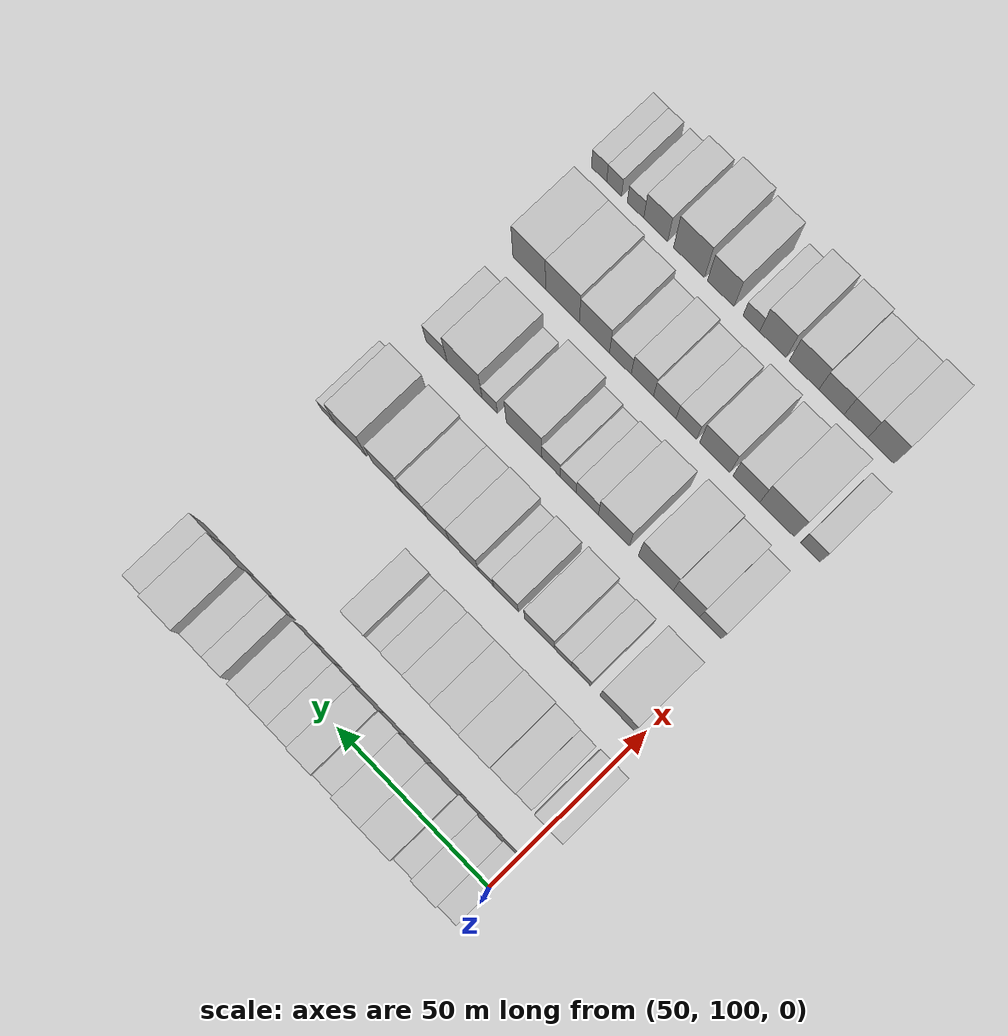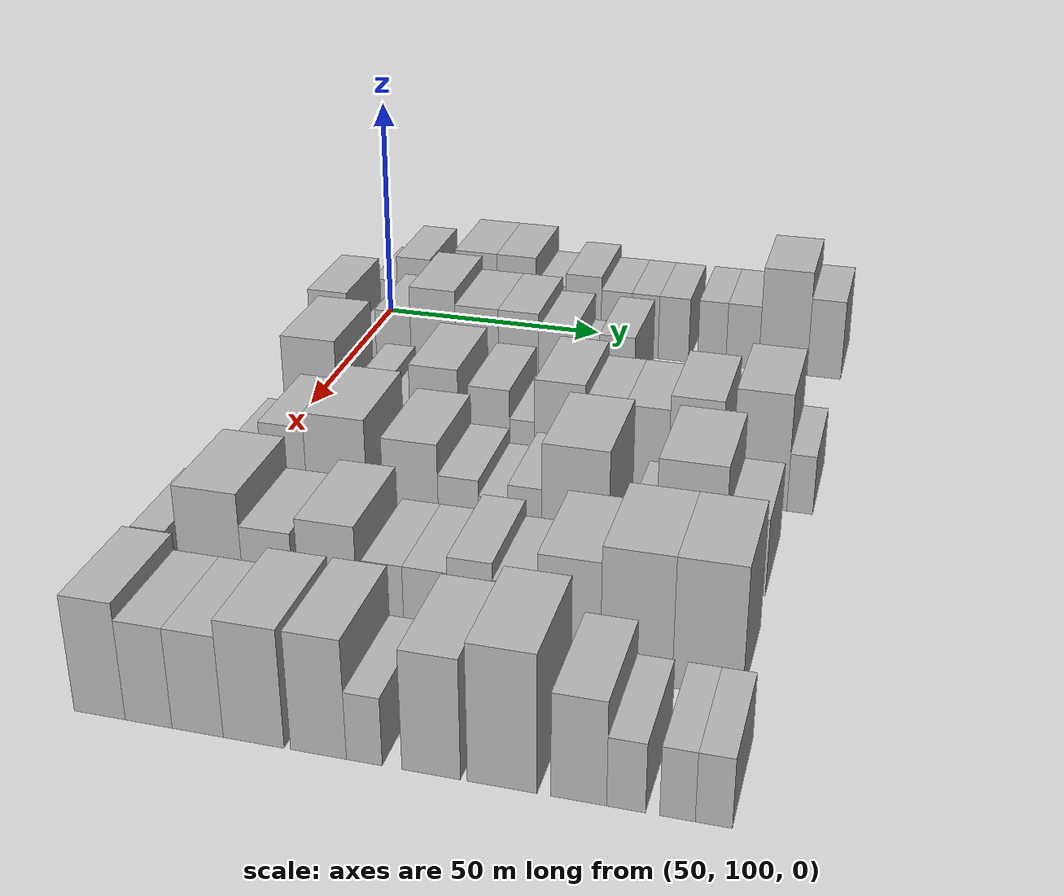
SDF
<sdf version="1.6">
 <world name="default">
  <model name="building_70">
   <static>1</static>
   <pose>50.0000 102.3717 0 0.000000 0.000000 0.000000</pose>
   <link name="link">
    <pose>0 0 6.00 0 0 0</pose>
    <collision name="collision"><geometry><box><size>20.0000 5.9237 12.0000</size></box></geometry></collision>
    <visual name="visual">
     <cast_shadows>0</cast_shadows>
     <geometry><box><size>20.0000 5.9237 12.0000</size></box></geometry>
     <material>
      <script>
       <uri>model://HANNAS_wall/materials/scripts</uri>
       <uri>model://HANNAS_wall/materials/textures</uri>
       <name>vrc/HANNAS_wall</name>
      </script>
     </material>
    </visual>
   </link>
  </model>
  <model name="building_71">
   <static>1</static>
   <pose>50.0000 109.3445 0 0.000000 0.000000 0.000000</pose>
   <link name="link">
    <pose>0 0 9.00 0 0 0</pose>
    <collision name="collision"><geometry><box><size>20.0000 8.0220 18.0000</size></box></geometry></collision>
    <visual name="visual">
     <cast_shadows>0</cast_shadows>
     <geometry><box><size>20.0000 8.0220 18.0000</size></box></geometry>
     <material>
      <script>
       <uri>model://HANNAS_wall/materials/scripts</uri>
       <uri>model://HANNAS_wall/materials/textures</uri>
       <name>vrc/HANNAS_wall</name>
      </script>
     </material>
    </visual>
   </link>
  </model>
  <model name="building_72">
   <static>1</static>
   <pose>50.0000 116.3219 0 0.000000 0.000000 0.000000</pose>
   <link name="link">
    <pose>0 0 6.00 0 0 0</pose>
    <collision name="collision"><geometry><box><size>20.0000 5.9327 12.0000</size></box></geometry></collision>
    <visual name="visual">
     <cast_shadows>0</cast_shadows>
     <geometry><box><size>20.0000 5.9327 12.0000</size></box></geometry>
     <material>
      <script>
       <uri>model://HANNAS_wall/materials/scripts</uri>
       <uri>model://HANNAS_wall/materials/textures</uri>
       <name>vrc/HANNAS_wall</name>
      </script>
     </material>
    </visual>
   </link>
  </model>
  <model name="building_73">
   <static>1</static>
   <pose>50.0000 124.0913 0 0.000000 0.000000 0.000000</pose>
   <link name="link">
    <pose>0 0 10.50 0 0 0</pose>
    <collision name="collision"><geometry><box><size>20.0000 9.6061 21.0000</size></box></geometry></collision>
    <visual name="visual">
     <cast_shadows>0</cast_shadows>
     <geometry><box><size>20.0000 9.6061 21.0000</size></box></geometry>
     <material>
      <script>
       <uri>model://HANNAS_wall/materials/scripts</uri>
       <uri>model://HANNAS_wall/materials/textures</uri>
       <name>vrc/HANNAS_wall</name>
      </script>
     </material>
    </visual>
   </link>
  </model>
  <model name="building_74">
   <static>1</static>
   <pose>50.0000 133.4010 0 0.000000 0.000000 0.000000</pose>
   <link name="link">
    <pose>0 0 10.50 0 0 0</pose>
    <collision name="collision"><geometry><box><size>20.0000 9.0134 21.0000</size></box></geometry></collision>
    <visual name="visual">
     <cast_shadows>0</cast_shadows>
     <geometry><box><size>20.0000 9.0134 21.0000</size></box></geometry>
     <material>
      <script>
       <uri>model://HANNAS_wall/materials/scripts</uri>
       <uri>model://HANNAS_wall/materials/textures</uri>
       <name>vrc/HANNAS_wall</name>
      </script>
     </material>
    </visual>
   </link>
  </model>
  <model name="building_75">
   <static>1</static>
   <pose>50.0000 141.3078 0 0.000000 0.000000 0.000000</pose>
   <link name="link">
    <pose>0 0 7.50 0 0 0</pose>
    <collision name="collision"><geometry><box><size>20.0000 6.8001 15.0000</size></box></geometry></collision>
    <visual name="visual">
     <cast_shadows>0</cast_shadows>
     <geometry><box><size>20.0000 6.8001 15.0000</size></box></geometry>
     <material>
      <script>
       <uri>model://HANNAS_wall/materials/scripts</uri>
       <uri>model://HANNAS_wall/materials/textures</uri>
       <name>vrc/HANNAS_wall</name>
      </script>
     </material>
    </visual>
   </link>
  </model>
  <model name="building_76">
   <static>1</static>
   <pose>50.0000 148.7299 0 0.000000 0.000000 0.000000</pose>
   <link name="link">
    <pose>0 0 9.00 0 0 0</pose>
    <collision name="collision"><geometry><box><size>20.0000 8.0440 18.0000</size></box></geometry></collision>
    <visual name="visual">
     <cast_shadows>0</cast_shadows>
     <geometry><box><size>20.0000 8.0440 18.0000</size></box></geometry>
     <material>
      <script>
       <uri>model://HANNAS_wall/materials/scripts</uri>
       <uri>model://HANNAS_wall/materials/textures</uri>
       <name>vrc/HANNAS_wall</name>
      </script>
     </material>
    </visual>
   </link>
  </model>
  <model name="building_77">
   <static>1</static>
   <pose>50.0000 156.1494 0 0.000000 0.000000 0.000000</pose>
   <link name="link">
    <pose>0 0 7.50 0 0 0</pose>
    <collision name="collision"><geometry><box><size>20.0000 6.7950 15.0000</size></box></geometry></collision>
    <visual name="visual">
     <cast_shadows>0</cast_shadows>
     <geometry><box><size>20.0000 6.7950 15.0000</size></box></geometry>
     <material>
      <script>
       <uri>model://HANNAS_wall/materials/scripts</uri>
       <uri>model://HANNAS_wall/materials/textures</uri>
       <name>vrc/HANNAS_wall</name>
      </script>
     </material>
    </visual>
   </link>
  </model>
  <model name="building_78">
   <static>1</static>
   <pose>50.0000 162.6250 0 0.000000 0.000000 0.000000</pose>
   <link name="link">
    <pose>0 0 7.50 0 0 0</pose>
    <collision name="collision"><geometry><box><size>20.0000 6.1562 15.0000</size></box></geometry></collision>
    <visual name="visual">
     <cast_shadows>0</cast_shadows>
     <geometry><box><size>20.0000 6.1562 15.0000</size></box></geometry>
     <material>
      <script>
       <uri>model://HANNAS_wall/materials/scripts</uri>
       <uri>model://HANNAS_wall/materials/textures</uri>
       <name>vrc/HANNAS_wall</name>
      </script>
     </material>
    </visual>
   </link>
  </model>
  <model name="building_79">
   <static>1</static>
   <pose>50.0000 169.1101 0 0.000000 0.000000 0.000000</pose>
   <link name="link">
    <pose>0 0 7.50 0 0 0</pose>
    <collision name="collision"><geometry><box><size>20.0000 6.8139 15.0000</size></box></geometry></collision>
    <visual name="visual">
     <cast_shadows>0</cast_shadows>
     <geometry><box><size>20.0000 6.8139 15.0000</size></box></geometry>
     <material>
      <script>
       <uri>model://HANNAS_wall/materials/scripts</uri>
       <uri>model://HANNAS_wall/materials/textures</uri>
       <name>vrc/HANNAS_wall</name>
      </script>
     </material>
    </visual>
   </link>
  </model>
  <model name="building_80">
   <static>1</static>
   <pose>50.0000 177.6309 0 0.000000 0.000000 0.000000</pose>
   <link name="link">
    <pose>0 0 7.50 0 0 0</pose>
    <collision name="collision"><geometry><box><size>20.0000 6.2276 15.0000</size></box></geometry></collision>
    <visual name="visual">
     <cast_shadows>0</cast_shadows>
     <geometry><box><size>20.0000 6.2276 15.0000</size></box></geometry>
     <material>
      <script>
       <uri>model://HANNAS_wall/materials/scripts</uri>
       <uri>model://HANNAS_wall/materials/textures</uri>
       <name>vrc/HANNAS_wall</name>
      </script>
     </material>
    </visual>
   </link>
  </model>
  <model name="building_81">
   <static>1</static>
   <pose>50.0000 184.3388 0 0.000000 0.000000 0.000000</pose>
   <link name="link">
    <pose>0 0 7.50 0 0 0</pose>
    <collision name="collision"><geometry><box><size>20.0000 7.1883 15.0000</size></box></geometry></collision>
    <visual name="visual">
     <cast_shadows>0</cast_shadows>
     <geometry><box><size>20.0000 7.1883 15.0000</size></box></geometry>
     <material>
      <script>
       <uri>model://HANNAS_wall/materials/scripts</uri>
       <uri>model://HANNAS_wall/materials/textures</uri>
       <name>vrc/HANNAS_wall</name>
      </script>
     </material>
    </visual>
   </link>
  </model>
  <model name="building_82">
   <static>1</static>
   <pose>50.0000 193.1918 0 0.000000 0.000000 0.000000</pose>
   <link name="link">
    <pose>0 0 12.00 0 0 0</pose>
    <collision name="collision"><geometry><box><size>20.0000 10.5178 24.0000</size></box></geometry></collision>
    <visual name="visual">
     <cast_shadows>0</cast_shadows>
     <geometry><box><size>20.0000 10.5178 24.0000</size></box></geometry>
     <material>
      <script>
       <uri>model://HANNAS_wall/materials/scripts</uri>
       <uri>model://HANNAS_wall/materials/textures</uri>
       <name>vrc/HANNAS_wall</name>
      </script>
     </material>
    </visual>
   </link>
  </model>
  <model name="building_83">
   <static>1</static>
   <pose>50.0000 202.0805 0 0.000000 0.000000 0.000000</pose>
   <link name="link">
    <pose>0 0 9.00 0 0 0</pose>
    <collision name="collision"><geometry><box><size>20.0000 7.2596 18.0000</size></box></geometry></collision>
    <visual name="visual">
     <cast_shadows>0</cast_shadows>
     <geometry><box><size>20.0000 7.2596 18.0000</size></box></geometry>
     <material>
      <script>
       <uri>model://HANNAS_wall/materials/scripts</uri>
       <uri>model://HANNAS_wall/materials/textures</uri>
       <name>vrc/HANNAS_wall</name>
      </script>
     </material>
    </visual>
   </link>
  </model>
  <model name="building_186">
   <static>1</static>
   <pose>79.0000 100.2987 0 0.000000 0.000000 0.000000</pose>
   <link name="link">
    <pose>0 0 10.50 0 0 0</pose>
    <collision name="collision"><geometry><box><size>20.0000 8.6816 21.0000</size></box></geometry></collision>
    <visual name="visual">
     <cast_shadows>0</cast_shadows>
     <geometry><box><size>20.0000 8.6816 21.0000</size></box></geometry>
     <material>
      <script>
       <uri>model://HANNAS_wall/materials/scripts</uri>
       <uri>model://HANNAS_wall/materials/textures</uri>
       <name>vrc/HANNAS_wall</name>
      </script>
     </material>
    </visual>
   </link>
  </model>
  <model name="building_187">
   <static>1</static>
   <pose>79.0000 108.1891 0 0.000000 0.000000 0.000000</pose>
   <link name="link">
    <pose>0 0 6.00 0 0 0</pose>
    <collision name="collision"><geometry><box><size>20.0000 5.0992 12.0000</size></box></geometry></collision>
    <visual name="visual">
     <cast_shadows>0</cast_shadows>
     <geometry><box><size>20.0000 5.0992 12.0000</size></box></geometry>
     <material>
      <script>
       <uri>model://HANNAS_wall/materials/scripts</uri>
       <uri>model://HANNAS_wall/materials/textures</uri>
       <name>vrc/HANNAS_wall</name>
      </script>
     </material>
    </visual>
   </link>
  </model>
  <model name="building_188">
   <static>1</static>
   <pose>79.0000 114.6139 0 0.000000 0.000000 0.000000</pose>
   <link name="link">
    <pose>0 0 9.00 0 0 0</pose>
    <collision name="collision"><geometry><box><size>20.0000 7.7504 18.0000</size></box></geometry></collision>
    <visual name="visual">
     <cast_shadows>0</cast_shadows>
     <geometry><box><size>20.0000 7.7504 18.0000</size></box></geometry>
     <material>
      <script>
       <uri>model://HANNAS_wall/materials/scripts</uri>
       <uri>model://HANNAS_wall/materials/textures</uri>
       <name>vrc/HANNAS_wall</name>
      </script>
     </material>
    </visual>
   </link>
  </model>
  <model name="building_189">
   <static>1</static>
   <pose>79.0000 123.4090 0 0.000000 0.000000 0.000000</pose>
   <link name="link">
    <pose>0 0 12.00 0 0 0</pose>
    <collision name="collision"><geometry><box><size>20.0000 9.8398 24.0000</size></box></geometry></collision>
    <visual name="visual">
     <cast_shadows>0</cast_shadows>
     <geometry><box><size>20.0000 9.8398 24.0000</size></box></geometry>
     <material>
      <script>
       <uri>model://HANNAS_wall/materials/scripts</uri>
       <uri>model://HANNAS_wall/materials/textures</uri>
       <name>vrc/HANNAS_wall</name>
      </script>
     </material>
    </visual>
   </link>
  </model>
  <model name="building_190">
   <static>1</static>
   <pose>79.0000 132.9462 0 0.000000 0.000000 0.000000</pose>
   <link name="link">
    <pose>0 0 10.50 0 0 0</pose>
    <collision name="collision"><geometry><box><size>20.0000 9.2345 21.0000</size></box></geometry></collision>
    <visual name="visual">
     <cast_shadows>0</cast_shadows>
     <geometry><box><size>20.0000 9.2345 21.0000</size></box></geometry>
     <material>
      <script>
       <uri>model://HANNAS_wall/materials/scripts</uri>
       <uri>model://HANNAS_wall/materials/textures</uri>
       <name>vrc/HANNAS_wall</name>
      </script>
     </material>
    </visual>
   </link>
  </model>
  <model name="building_191">
   <static>1</static>
   <pose>79.0000 141.8752 0 0.000000 0.000000 0.000000</pose>
   <link name="link">
    <pose>0 0 10.50 0 0 0</pose>
    <collision name="collision"><geometry><box><size>20.0000 8.6237 21.0000</size></box></geometry></collision>
    <visual name="visual">
     <cast_shadows>0</cast_shadows>
     <geometry><box><size>20.0000 8.6237 21.0000</size></box></geometry>
     <material>
      <script>
       <uri>model://HANNAS_wall/materials/scripts</uri>
       <uri>model://HANNAS_wall/materials/textures</uri>
       <name>vrc/HANNAS_wall</name>
      </script>
     </material>
    </visual>
   </link>
  </model>
  <model name="building_192">
   <static>1</static>
   <pose>79.0000 149.8322 0 0.000000 0.000000 0.000000</pose>
   <link name="link">
    <pose>0 0 9.00 0 0 0</pose>
    <collision name="collision"><geometry><box><size>20.0000 7.2902 18.0000</size></box></geometry></collision>
    <visual name="visual">
     <cast_shadows>0</cast_shadows>
     <geometry><box><size>20.0000 7.2902 18.0000</size></box></geometry>
     <material>
      <script>
       <uri>model://HANNAS_wall/materials/scripts</uri>
       <uri>model://HANNAS_wall/materials/textures</uri>
       <name>vrc/HANNAS_wall</name>
      </script>
     </material>
    </visual>
   </link>
  </model>
  <model name="building_193">
   <static>1</static>
   <pose>79.0000 156.1407 0 0.000000 0.000000 0.000000</pose>
   <link name="link">
    <pose>0 0 6.00 0 0 0</pose>
    <collision name="collision"><geometry><box><size>20.0000 5.3268 12.0000</size></box></geometry></collision>
    <visual name="visual">
     <cast_shadows>0</cast_shadows>
     <geometry><box><size>20.0000 5.3268 12.0000</size></box></geometry>
     <material>
      <script>
       <uri>model://HANNAS_wall/materials/scripts</uri>
       <uri>model://HANNAS_wall/materials/textures</uri>
       <name>vrc/HANNAS_wall</name>
      </script>
     </material>
    </visual>
   </link>
  </model>
  <model name="building_194">
   <static>1</static>
   <pose>79.0000 162.5492 0 0.000000 0.000000 0.000000</pose>
   <link name="link">
    <pose>0 0 9.00 0 0 0</pose>
    <collision name="collision"><geometry><box><size>20.0000 7.4901 18.0000</size></box></geometry></collision>
    <visual name="visual">
     <cast_shadows>0</cast_shadows>
     <geometry><box><size>20.0000 7.4901 18.0000</size></box></geometry>
     <material>
      <script>
       <uri>model://HANNAS_wall/materials/scripts</uri>
       <uri>model://HANNAS_wall/materials/textures</uri>
       <name>vrc/HANNAS_wall</name>
      </script>
     </material>
    </visual>
   </link>
  </model>
  <model name="building_301">
   <static>1</static>
   <pose>108.0000 107.7995 0 0.000000 0.000000 0.000000</pose>
   <link name="link">
    <pose>0 0 12.00 0 0 0</pose>
    <collision name="collision"><geometry><box><size>20.0000 11.0981 24.0000</size></box></geometry></collision>
    <visual name="visual">
     <cast_shadows>0</cast_shadows>
     <geometry><box><size>20.0000 11.0981 24.0000</size></box></geometry>
     <material>
      <script>
       <uri>model://HANNAS_wall/materials/scripts</uri>
       <uri>model://HANNAS_wall/materials/textures</uri>
       <name>vrc/HANNAS_wall</name>
      </script>
     </material>
    </visual>
   </link>
  </model>
  <model name="building_302">
   <static>1</static>
   <pose>108.0000 119.5000 0 0.000000 0.000000 0.000000</pose>
   <link name="link">
    <pose>0 0 7.50 0 0 0</pose>
    <collision name="collision"><geometry><box><size>20.0000 6.3029 15.0000</size></box></geometry></collision>
    <visual name="visual">
     <cast_shadows>0</cast_shadows>
     <geometry><box><size>20.0000 6.3029 15.0000</size></box></geometry>
     <material>
      <script>
       <uri>model://HANNAS_wall/materials/scripts</uri>
       <uri>model://HANNAS_wall/materials/textures</uri>
       <name>vrc/HANNAS_wall</name>
      </script>
     </material>
    </visual>
   </link>
  </model>
  <model name="building_303">
   <static>1</static>
   <pose>108.0000 125.4345 0 0.000000 0.000000 0.000000</pose>
   <link name="link">
    <pose>0 0 6.00 0 0 0</pose>
    <collision name="collision"><geometry><box><size>20.0000 5.5660 12.0000</size></box></geometry></collision>
    <visual name="visual">
     <cast_shadows>0</cast_shadows>
     <geometry><box><size>20.0000 5.5660 12.0000</size></box></geometry>
     <material>
      <script>
       <uri>model://HANNAS_wall/materials/scripts</uri>
       <uri>model://HANNAS_wall/materials/textures</uri>
       <name>vrc/HANNAS_wall</name>
      </script>
     </material>
    </visual>
   </link>
  </model>
  <model name="building_304">
   <static>1</static>
   <pose>108.0000 133.0907 0 0.000000 0.000000 0.000000</pose>
   <link name="link">
    <pose>0 0 10.50 0 0 0</pose>
    <collision name="collision"><geometry><box><size>20.0000 9.7465 21.0000</size></box></geometry></collision>
    <visual name="visual">
     <cast_shadows>0</cast_shadows>
     <geometry><box><size>20.0000 9.7465 21.0000</size></box></geometry>
     <material>
      <script>
       <uri>model://HANNAS_wall/materials/scripts</uri>
       <uri>model://HANNAS_wall/materials/textures</uri>
       <name>vrc/HANNAS_wall</name>
      </script>
     </material>
    </visual>
   </link>
  </model>
  <model name="building_305">
   <static>1</static>
   <pose>108.0000 144.0590 0 0.000000 0.000000 0.000000</pose>
   <link name="link">
    <pose>0 0 9.00 0 0 0</pose>
    <collision name="collision"><geometry><box><size>20.0000 8.1903 18.0000</size></box></geometry></collision>
    <visual name="visual">
     <cast_shadows>0</cast_shadows>
     <geometry><box><size>20.0000 8.1903 18.0000</size></box></geometry>
     <material>
      <script>
       <uri>model://HANNAS_wall/materials/scripts</uri>
       <uri>model://HANNAS_wall/materials/textures</uri>
       <name>vrc/HANNAS_wall</name>
      </script>
     </material>
    </visual>
   </link>
  </model>
  <model name="building_306">
   <static>1</static>
   <pose>108.0000 150.6226 0 0.000000 0.000000 0.000000</pose>
   <link name="link">
    <pose>0 0 6.00 0 0 0</pose>
    <collision name="collision"><geometry><box><size>20.0000 4.9369 12.0000</size></box></geometry></collision>
    <visual name="visual">
     <cast_shadows>0</cast_shadows>
     <geometry><box><size>20.0000 4.9369 12.0000</size></box></geometry>
     <material>
      <script>
       <uri>model://HANNAS_wall/materials/scripts</uri>
       <uri>model://HANNAS_wall/materials/textures</uri>
       <name>vrc/HANNAS_wall</name>
      </script>
     </material>
    </visual>
   </link>
  </model>
  <model name="building_307">
   <static>1</static>
   <pose>108.0000 157.9854 0 0.000000 0.000000 0.000000</pose>
   <link name="link">
    <pose>0 0 10.50 0 0 0</pose>
    <collision name="collision"><geometry><box><size>20.0000 9.7885 21.0000</size></box></geometry></collision>
    <visual name="visual">
     <cast_shadows>0</cast_shadows>
     <geometry><box><size>20.0000 9.7885 21.0000</size></box></geometry>
     <material>
      <script>
       <uri>model://HANNAS_wall/materials/scripts</uri>
       <uri>model://HANNAS_wall/materials/textures</uri>
       <name>vrc/HANNAS_wall</name>
      </script>
     </material>
    </visual>
   </link>
  </model>
  <model name="building_308">
   <static>1</static>
   <pose>108.0000 166.6522 0 0.000000 0.000000 0.000000</pose>
   <link name="link">
    <pose>0 0 9.00 0 0 0</pose>
    <collision name="collision"><geometry><box><size>20.0000 7.5452 18.0000</size></box></geometry></collision>
    <visual name="visual">
     <cast_shadows>0</cast_shadows>
     <geometry><box><size>20.0000 7.5452 18.0000</size></box></geometry>
     <material>
      <script>
       <uri>model://HANNAS_wall/materials/scripts</uri>
       <uri>model://HANNAS_wall/materials/textures</uri>
       <name>vrc/HANNAS_wall</name>
      </script>
     </material>
    </visual>
   </link>
  </model>
  <model name="building_309">
   <static>1</static>
   <pose>108.0000 174.6749 0 0.000000 0.000000 0.000000</pose>
   <link name="link">
    <pose>0 0 9.00 0 0 0</pose>
    <collision name="collision"><geometry><box><size>20.0000 8.5002 18.0000</size></box></geometry></collision>
    <visual name="visual">
     <cast_shadows>0</cast_shadows>
     <geometry><box><size>20.0000 8.5002 18.0000</size></box></geometry>
     <material>
      <script>
       <uri>model://HANNAS_wall/materials/scripts</uri>
       <uri>model://HANNAS_wall/materials/textures</uri>
       <name>vrc/HANNAS_wall</name>
      </script>
     </material>
    </visual>
   </link>
  </model>
  <model name="building_310">
   <static>1</static>
   <pose>108.0000 183.9247 0 0.000000 0.000000 0.000000</pose>
   <link name="link">
    <pose>0 0 10.50 0 0 0</pose>
    <collision name="collision"><geometry><box><size>20.0000 9.9994 21.0000</size></box></geometry></collision>
    <visual name="visual">
     <cast_shadows>0</cast_shadows>
     <geometry><box><size>20.0000 9.9994 21.0000</size></box></geometry>
     <material>
      <script>
       <uri>model://HANNAS_wall/materials/scripts</uri>
       <uri>model://HANNAS_wall/materials/textures</uri>
       <name>vrc/HANNAS_wall</name>
      </script>
     </material>
    </visual>
   </link>
  </model>
  <model name="building_311">
   <static>1</static>
   <pose>108.0000 196.1086 0 0.000000 0.000000 0.000000</pose>
   <link name="link">
    <pose>0 0 12.00 0 0 0</pose>
    <collision name="collision"><geometry><box><size>20.0000 10.3683 24.0000</size></box></geometry></collision>
    <visual name="visual">
     <cast_shadows>0</cast_shadows>
     <geometry><box><size>20.0000 10.3683 24.0000</size></box></geometry>
     <material>
      <script>
       <uri>model://HANNAS_wall/materials/scripts</uri>
       <uri>model://HANNAS_wall/materials/textures</uri>
       <name>vrc/HANNAS_wall</name>
      </script>
     </material>
    </visual>
   </link>
  </model>
  <model name="building_312">
   <static>1</static>
   <pose>108.0000 203.6985 0 0.000000 0.000000 0.000000</pose>
   <link name="link">
    <pose>0 0 6.00 0 0 0</pose>
    <collision name="collision"><geometry><box><size>20.0000 4.8115 12.0000</size></box></geometry></collision>
    <visual name="visual">
     <cast_shadows>0</cast_shadows>
     <geometry><box><size>20.0000 4.8115 12.0000</size></box></geometry>
     <material>
      <script>
       <uri>model://HANNAS_wall/materials/scripts</uri>
       <uri>model://HANNAS_wall/materials/textures</uri>
       <name>vrc/HANNAS_wall</name>
      </script>
     </material>
    </visual>
   </link>
  </model>
  <model name="building_419">
   <static>1</static>
   <pose>137.0000 106.5442 0 0.000000 0.000000 0.000000</pose>
   <link name="link">
    <pose>0 0 7.50 0 0 0</pose>
    <collision name="collision"><geometry><box><size>20.0000 7.0243 15.0000</size></box></geometry></collision>
    <visual name="visual">
     <cast_shadows>0</cast_shadows>
     <geometry><box><size>20.0000 7.0243 15.0000</size></box></geometry>
     <material>
      <script>
       <uri>model://HANNAS_wall/materials/scripts</uri>
       <uri>model://HANNAS_wall/materials/textures</uri>
       <name>vrc/HANNAS_wall</name>
      </script>
     </material>
    </visual>
   </link>
  </model>
  <model name="building_420">
   <static>1</static>
   <pose>137.0000 114.3470 0 0.000000 0.000000 0.000000</pose>
   <link name="link">
    <pose>0 0 10.50 0 0 0</pose>
    <collision name="collision"><geometry><box><size>20.0000 8.5813 21.0000</size></box></geometry></collision>
    <visual name="visual">
     <cast_shadows>0</cast_shadows>
     <geometry><box><size>20.0000 8.5813 21.0000</size></box></geometry>
     <material>
      <script>
       <uri>model://HANNAS_wall/materials/scripts</uri>
       <uri>model://HANNAS_wall/materials/textures</uri>
       <name>vrc/HANNAS_wall</name>
      </script>
     </material>
    </visual>
   </link>
  </model>
  <model name="building_421">
   <static>1</static>
   <pose>137.0000 124.3521 0 0.000000 0.000000 0.000000</pose>
   <link name="link">
    <pose>0 0 12.00 0 0 0</pose>
    <collision name="collision"><geometry><box><size>20.0000 11.4288 24.0000</size></box></geometry></collision>
    <visual name="visual">
     <cast_shadows>0</cast_shadows>
     <geometry><box><size>20.0000 11.4288 24.0000</size></box></geometry>
     <material>
      <script>
       <uri>model://HANNAS_wall/materials/scripts</uri>
       <uri>model://HANNAS_wall/materials/textures</uri>
       <name>vrc/HANNAS_wall</name>
      </script>
     </material>
    </visual>
   </link>
  </model>
  <model name="building_422">
   <static>1</static>
   <pose>137.0000 138.1848 0 0.000000 0.000000 0.000000</pose>
   <link name="link">
    <pose>0 0 10.50 0 0 0</pose>
    <collision name="collision"><geometry><box><size>20.0000 10.2367 21.0000</size></box></geometry></collision>
    <visual name="visual">
     <cast_shadows>0</cast_shadows>
     <geometry><box><size>20.0000 10.2367 21.0000</size></box></geometry>
     <material>
      <script>
       <uri>model://HANNAS_wall/materials/scripts</uri>
       <uri>model://HANNAS_wall/materials/textures</uri>
       <name>vrc/HANNAS_wall</name>
      </script>
     </material>
    </visual>
   </link>
  </model>
  <model name="building_423">
   <static>1</static>
   <pose>137.0000 147.0032 0 0.000000 0.000000 0.000000</pose>
   <link name="link">
    <pose>0 0 7.50 0 0 0</pose>
    <collision name="collision"><geometry><box><size>20.0000 7.4001 15.0000</size></box></geometry></collision>
    <visual name="visual">
     <cast_shadows>0</cast_shadows>
     <geometry><box><size>20.0000 7.4001 15.0000</size></box></geometry>
     <material>
      <script>
       <uri>model://HANNAS_wall/materials/scripts</uri>
       <uri>model://HANNAS_wall/materials/textures</uri>
       <name>vrc/HANNAS_wall</name>
      </script>
     </material>
    </visual>
   </link>
  </model>
  <model name="building_424">
   <static>1</static>
   <pose>137.0000 153.3705 0 0.000000 0.000000 0.000000</pose>
   <link name="link">
    <pose>0 0 6.00 0 0 0</pose>
    <collision name="collision"><geometry><box><size>20.0000 5.3345 12.0000</size></box></geometry></collision>
    <visual name="visual">
     <cast_shadows>0</cast_shadows>
     <geometry><box><size>20.0000 5.3345 12.0000</size></box></geometry>
     <material>
      <script>
       <uri>model://HANNAS_wall/materials/scripts</uri>
       <uri>model://HANNAS_wall/materials/textures</uri>
       <name>vrc/HANNAS_wall</name>
      </script>
     </material>
    </visual>
   </link>
  </model>
  <model name="building_425">
   <static>1</static>
   <pose>137.0000 159.0671 0 0.000000 0.000000 0.000000</pose>
   <link name="link">
    <pose>0 0 7.50 0 0 0</pose>
    <collision name="collision"><geometry><box><size>20.0000 6.0586 15.0000</size></box></geometry></collision>
    <visual name="visual">
     <cast_shadows>0</cast_shadows>
     <geometry><box><size>20.0000 6.0586 15.0000</size></box></geometry>
     <material>
      <script>
       <uri>model://HANNAS_wall/materials/scripts</uri>
       <uri>model://HANNAS_wall/materials/textures</uri>
       <name>vrc/HANNAS_wall</name>
      </script>
     </material>
    </visual>
   </link>
  </model>
  <model name="building_426">
   <static>1</static>
   <pose>137.0000 168.0599 0 0.000000 0.000000 0.000000</pose>
   <link name="link">
    <pose>0 0 12.00 0 0 0</pose>
    <collision name="collision"><geometry><box><size>20.0000 11.9272 24.0000</size></box></geometry></collision>
    <visual name="visual">
     <cast_shadows>0</cast_shadows>
     <geometry><box><size>20.0000 11.9272 24.0000</size></box></geometry>
     <material>
      <script>
       <uri>model://HANNAS_wall/materials/scripts</uri>
       <uri>model://HANNAS_wall/materials/textures</uri>
       <name>vrc/HANNAS_wall</name>
      </script>
     </material>
    </visual>
   </link>
  </model>
  <model name="building_427">
   <static>1</static>
   <pose>137.0000 179.6148 0 0.000000 0.000000 0.000000</pose>
   <link name="link">
    <pose>0 0 6.00 0 0 0</pose>
    <collision name="collision"><geometry><box><size>20.0000 5.1826 12.0000</size></box></geometry></collision>
    <visual name="visual">
     <cast_shadows>0</cast_shadows>
     <geometry><box><size>20.0000 5.1826 12.0000</size></box></geometry>
     <material>
      <script>
       <uri>model://HANNAS_wall/materials/scripts</uri>
       <uri>model://HANNAS_wall/materials/textures</uri>
       <name>vrc/HANNAS_wall</name>
      </script>
     </material>
    </visual>
   </link>
  </model>
  <model name="building_428">
   <static>1</static>
   <pose>137.0000 188.1503 0 0.000000 0.000000 0.000000</pose>
   <link name="link">
    <pose>0 0 12.00 0 0 0</pose>
    <collision name="collision"><geometry><box><size>20.0000 11.8883 24.0000</size></box></geometry></collision>
    <visual name="visual">
     <cast_shadows>0</cast_shadows>
     <geometry><box><size>20.0000 11.8883 24.0000</size></box></geometry>
     <material>
      <script>
       <uri>model://HANNAS_wall/materials/scripts</uri>
       <uri>model://HANNAS_wall/materials/textures</uri>
       <name>vrc/HANNAS_wall</name>
      </script>
     </material>
    </visual>
   </link>
  </model>
  <model name="building_429">
   <static>1</static>
   <pose>137.0000 197.6852 0 0.000000 0.000000 0.000000</pose>
   <link name="link">
    <pose>0 0 7.50 0 0 0</pose>
    <collision name="collision"><geometry><box><size>20.0000 7.1814 15.0000</size></box></geometry></collision>
    <visual name="visual">
     <cast_shadows>0</cast_shadows>
     <geometry><box><size>20.0000 7.1814 15.0000</size></box></geometry>
     <material>
      <script>
       <uri>model://HANNAS_wall/materials/scripts</uri>
       <uri>model://HANNAS_wall/materials/textures</uri>
       <name>vrc/HANNAS_wall</name>
      </script>
     </material>
    </visual>
   </link>
  </model>
  <model name="building_523">
   <static>1</static>
   <pose>166.0000 102.7805 0 0.000000 0.000000 0.000000</pose>
   <link name="link">
    <pose>0 0 7.50 0 0 0</pose>
    <collision name="collision"><geometry><box><size>20.0000 6.2424 15.0000</size></box></geometry></collision>
    <visual name="visual">
     <cast_shadows>0</cast_shadows>
     <geometry><box><size>20.0000 6.2424 15.0000</size></box></geometry>
     <material>
      <script>
       <uri>model://HANNAS_wall/materials/scripts</uri>
       <uri>model://HANNAS_wall/materials/textures</uri>
       <name>vrc/HANNAS_wall</name>
      </script>
     </material>
    </visual>
   </link>
  </model>
  <model name="building_524">
   <static>1</static>
   <pose>166.0000 113.5348 0 0.000000 0.000000 0.000000</pose>
   <link name="link">
    <pose>0 0 12.00 0 0 0</pose>
    <collision name="collision"><geometry><box><size>20.0000 11.2663 24.0000</size></box></geometry></collision>
    <visual name="visual">
     <cast_shadows>0</cast_shadows>
     <geometry><box><size>20.0000 11.2663 24.0000</size></box></geometry>
     <material>
      <script>
       <uri>model://HANNAS_wall/materials/scripts</uri>
       <uri>model://HANNAS_wall/materials/textures</uri>
       <name>vrc/HANNAS_wall</name>
      </script>
     </material>
    </visual>
   </link>
  </model>
  <model name="building_525">
   <static>1</static>
   <pose>166.0000 123.5652 0 0.000000 0.000000 0.000000</pose>
   <link name="link">
    <pose>0 0 9.00 0 0 0</pose>
    <collision name="collision"><geometry><box><size>20.0000 8.7945 18.0000</size></box></geometry></collision>
    <visual name="visual">
     <cast_shadows>0</cast_shadows>
     <geometry><box><size>20.0000 8.7945 18.0000</size></box></geometry>
     <material>
      <script>
       <uri>model://HANNAS_wall/materials/scripts</uri>
       <uri>model://HANNAS_wall/materials/textures</uri>
       <name>vrc/HANNAS_wall</name>
      </script>
     </material>
    </visual>
   </link>
  </model>
  <model name="building_526">
   <static>1</static>
   <pose>166.0000 133.9883 0 0.000000 0.000000 0.000000</pose>
   <link name="link">
    <pose>0 0 10.50 0 0 0</pose>
    <collision name="collision"><geometry><box><size>20.0000 10.0518 21.0000</size></box></geometry></collision>
    <visual name="visual">
     <cast_shadows>0</cast_shadows>
     <geometry><box><size>20.0000 10.0518 21.0000</size></box></geometry>
     <material>
      <script>
       <uri>model://HANNAS_wall/materials/scripts</uri>
       <uri>model://HANNAS_wall/materials/textures</uri>
       <name>vrc/HANNAS_wall</name>
      </script>
     </material>
    </visual>
   </link>
  </model>
  <model name="building_527">
   <static>1</static>
   <pose>166.0000 143.4237 0 0.000000 0.000000 0.000000</pose>
   <link name="link">
    <pose>0 0 7.50 0 0 0</pose>
    <collision name="collision"><geometry><box><size>20.0000 6.8190 15.0000</size></box></geometry></collision>
    <visual name="visual">
     <cast_shadows>0</cast_shadows>
     <geometry><box><size>20.0000 6.8190 15.0000</size></box></geometry>
     <material>
      <script>
       <uri>model://HANNAS_wall/materials/scripts</uri>
       <uri>model://HANNAS_wall/materials/textures</uri>
       <name>vrc/HANNAS_wall</name>
      </script>
     </material>
    </visual>
   </link>
  </model>
  <model name="building_528">
   <static>1</static>
   <pose>166.0000 150.5779 0 0.000000 0.000000 0.000000</pose>
   <link name="link">
    <pose>0 0 7.50 0 0 0</pose>
    <collision name="collision"><geometry><box><size>20.0000 7.4894 15.0000</size></box></geometry></collision>
    <visual name="visual">
     <cast_shadows>0</cast_shadows>
     <geometry><box><size>20.0000 7.4894 15.0000</size></box></geometry>
     <material>
      <script>
       <uri>model://HANNAS_wall/materials/scripts</uri>
       <uri>model://HANNAS_wall/materials/textures</uri>
       <name>vrc/HANNAS_wall</name>
      </script>
     </material>
    </visual>
   </link>
  </model>
  <model name="building_529">
   <static>1</static>
   <pose>166.0000 158.0360 0 0.000000 0.000000 0.000000</pose>
   <link name="link">
    <pose>0 0 9.00 0 0 0</pose>
    <collision name="collision"><geometry><box><size>20.0000 7.4268 18.0000</size></box></geometry></collision>
    <visual name="visual">
     <cast_shadows>0</cast_shadows>
     <geometry><box><size>20.0000 7.4268 18.0000</size></box></geometry>
     <material>
      <script>
       <uri>model://HANNAS_wall/materials/scripts</uri>
       <uri>model://HANNAS_wall/materials/textures</uri>
       <name>vrc/HANNAS_wall</name>
      </script>
     </material>
    </visual>
   </link>
  </model>
  <model name="building_530">
   <static>1</static>
   <pose>166.0000 165.3867 0 0.000000 0.000000 0.000000</pose>
   <link name="link">
    <pose>0 0 7.50 0 0 0</pose>
    <collision name="collision"><geometry><box><size>20.0000 7.2746 15.0000</size></box></geometry></collision>
    <visual name="visual">
     <cast_shadows>0</cast_shadows>
     <geometry><box><size>20.0000 7.2746 15.0000</size></box></geometry>
     <material>
      <script>
       <uri>model://HANNAS_wall/materials/scripts</uri>
       <uri>model://HANNAS_wall/materials/textures</uri>
       <name>vrc/HANNAS_wall</name>
      </script>
     </material>
    </visual>
   </link>
  </model>
  <model name="building_531">
   <static>1</static>
   <pose>166.0000 174.1189 0 0.000000 0.000000 0.000000</pose>
   <link name="link">
    <pose>0 0 10.50 0 0 0</pose>
    <collision name="collision"><geometry><box><size>20.0000 10.1899 21.0000</size></box></geometry></collision>
    <visual name="visual">
     <cast_shadows>0</cast_shadows>
     <geometry><box><size>20.0000 10.1899 21.0000</size></box></geometry>
     <material>
      <script>
       <uri>model://HANNAS_wall/materials/scripts</uri>
       <uri>model://HANNAS_wall/materials/textures</uri>
       <name>vrc/HANNAS_wall</name>
      </script>
     </material>
    </visual>
   </link>
  </model>
  <model name="building_532">
   <static>1</static>
   <pose>166.0000 184.9431 0 0.000000 0.000000 0.000000</pose>
   <link name="link">
    <pose>0 0 12.00 0 0 0</pose>
    <collision name="collision"><geometry><box><size>20.0000 11.4584 24.0000</size></box></geometry></collision>
    <visual name="visual">
     <cast_shadows>0</cast_shadows>
     <geometry><box><size>20.0000 11.4584 24.0000</size></box></geometry>
     <material>
      <script>
       <uri>model://HANNAS_wall/materials/scripts</uri>
       <uri>model://HANNAS_wall/materials/textures</uri>
       <name>vrc/HANNAS_wall</name>
      </script>
     </material>
    </visual>
   </link>
  </model>
  <model name="building_533">
   <static>1</static>
   <pose>166.0000 196.1998 0 0.000000 0.000000 0.000000</pose>
   <link name="link">
    <pose>0 0 12.00 0 0 0</pose>
    <collision name="collision"><geometry><box><size>20.0000 11.0551 24.0000</size></box></geometry></collision>
    <visual name="visual">
     <cast_shadows>0</cast_shadows>
     <geometry><box><size>20.0000 11.0551 24.0000</size></box></geometry>
     <material>
      <script>
       <uri>model://HANNAS_wall/materials/scripts</uri>
       <uri>model://HANNAS_wall/materials/textures</uri>
       <name>vrc/HANNAS_wall</name>
      </script>
     </material>
    </visual>
   </link>
  </model>
  <model name="building_640">
   <static>1</static>
   <pose>195.0000 107.9968 0 0.000000 0.000000 0.000000</pose>
   <link name="link">
    <pose>0 0 10.50 0 0 0</pose>
    <collision name="collision"><geometry><box><size>20.0000 8.5628 21.0000</size></box></geometry></collision>
    <visual name="visual">
     <cast_shadows>0</cast_shadows>
     <geometry><box><size>20.0000 8.5628 21.0000</size></box></geometry>
     <material>
      <script>
       <uri>model://HANNAS_wall/materials/scripts</uri>
       <uri>model://HANNAS_wall/materials/textures</uri>
       <name>vrc/HANNAS_wall</name>
      </script>
     </material>
    </visual>
   </link>
  </model>
  <model name="building_641">
   <static>1</static>
   <pose>195.0000 116.1463 0 0.000000 0.000000 0.000000</pose>
   <link name="link">
    <pose>0 0 9.00 0 0 0</pose>
    <collision name="collision"><geometry><box><size>20.0000 7.7364 18.0000</size></box></geometry></collision>
    <visual name="visual">
     <cast_shadows>0</cast_shadows>
     <geometry><box><size>20.0000 7.7364 18.0000</size></box></geometry>
     <material>
      <script>
       <uri>model://HANNAS_wall/materials/scripts</uri>
       <uri>model://HANNAS_wall/materials/textures</uri>
       <name>vrc/HANNAS_wall</name>
      </script>
     </material>
    </visual>
   </link>
  </model>
  <model name="building_642">
   <static>1</static>
   <pose>195.0000 124.1794 0 0.000000 0.000000 0.000000</pose>
   <link name="link">
    <pose>0 0 9.00 0 0 0</pose>
    <collision name="collision"><geometry><box><size>20.0000 8.3297 18.0000</size></box></geometry></collision>
    <visual name="visual">
     <cast_shadows>0</cast_shadows>
     <geometry><box><size>20.0000 8.3297 18.0000</size></box></geometry>
     <material>
      <script>
       <uri>model://HANNAS_wall/materials/scripts</uri>
       <uri>model://HANNAS_wall/materials/textures</uri>
       <name>vrc/HANNAS_wall</name>
      </script>
     </material>
    </visual>
   </link>
  </model>
  <model name="building_643">
   <static>1</static>
   <pose>195.0000 133.2228 0 0.000000 0.000000 0.000000</pose>
   <link name="link">
    <pose>0 0 10.50 0 0 0</pose>
    <collision name="collision"><geometry><box><size>20.0000 9.7572 21.0000</size></box></geometry></collision>
    <visual name="visual">
     <cast_shadows>0</cast_shadows>
     <geometry><box><size>20.0000 9.7572 21.0000</size></box></geometry>
     <material>
      <script>
       <uri>model://HANNAS_wall/materials/scripts</uri>
       <uri>model://HANNAS_wall/materials/textures</uri>
       <name>vrc/HANNAS_wall</name>
      </script>
     </material>
    </visual>
   </link>
  </model>
  <model name="building_644">
   <static>1</static>
   <pose>195.0000 143.4860 0 0.000000 0.000000 0.000000</pose>
   <link name="link">
    <pose>0 0 10.50 0 0 0</pose>
    <collision name="collision"><geometry><box><size>20.0000 8.7693 21.0000</size></box></geometry></collision>
    <visual name="visual">
     <cast_shadows>0</cast_shadows>
     <geometry><box><size>20.0000 8.7693 21.0000</size></box></geometry>
     <material>
      <script>
       <uri>model://HANNAS_wall/materials/scripts</uri>
       <uri>model://HANNAS_wall/materials/textures</uri>
       <name>vrc/HANNAS_wall</name>
      </script>
     </material>
    </visual>
   </link>
  </model>
  <model name="building_645">
   <static>1</static>
   <pose>195.0000 150.6450 0 0.000000 0.000000 0.000000</pose>
   <link name="link">
    <pose>0 0 6.00 0 0 0</pose>
    <collision name="collision"><geometry><box><size>20.0000 5.5487 12.0000</size></box></geometry></collision>
    <visual name="visual">
     <cast_shadows>0</cast_shadows>
     <geometry><box><size>20.0000 5.5487 12.0000</size></box></geometry>
     <material>
      <script>
       <uri>model://HANNAS_wall/materials/scripts</uri>
       <uri>model://HANNAS_wall/materials/textures</uri>
       <name>vrc/HANNAS_wall</name>
      </script>
     </material>
    </visual>
   </link>
  </model>
  <model name="building_646">
   <static>1</static>
   <pose>195.0000 160.8721 0 0.000000 0.000000 0.000000</pose>
   <link name="link">
    <pose>0 0 10.50 0 0 0</pose>
    <collision name="collision"><geometry><box><size>20.0000 8.9055 21.0000</size></box></geometry></collision>
    <visual name="visual">
     <cast_shadows>0</cast_shadows>
     <geometry><box><size>20.0000 8.9055 21.0000</size></box></geometry>
     <material>
      <script>
       <uri>model://HANNAS_wall/materials/scripts</uri>
       <uri>model://HANNAS_wall/materials/textures</uri>
       <name>vrc/HANNAS_wall</name>
      </script>
     </material>
    </visual>
   </link>
  </model>
  <model name="building_647">
   <static>1</static>
   <pose>195.0000 171.5176 0 0.000000 0.000000 0.000000</pose>
   <link name="link">
    <pose>0 0 12.00 0 0 0</pose>
    <collision name="collision"><geometry><box><size>20.0000 10.3855 24.0000</size></box></geometry></collision>
    <visual name="visual">
     <cast_shadows>0</cast_shadows>
     <geometry><box><size>20.0000 10.3855 24.0000</size></box></geometry>
     <material>
      <script>
       <uri>model://HANNAS_wall/materials/scripts</uri>
       <uri>model://HANNAS_wall/materials/textures</uri>
       <name>vrc/HANNAS_wall</name>
      </script>
     </material>
    </visual>
   </link>
  </model>
  <model name="building_648">
   <static>1</static>
   <pose>195.0000 182.7578 0 0.000000 0.000000 0.000000</pose>
   <link name="link">
    <pose>0 0 9.00 0 0 0</pose>
    <collision name="collision"><geometry><box><size>20.0000 8.0948 18.0000</size></box></geometry></collision>
    <visual name="visual">
     <cast_shadows>0</cast_shadows>
     <geometry><box><size>20.0000 8.0948 18.0000</size></box></geometry>
     <material>
      <script>
       <uri>model://HANNAS_wall/materials/scripts</uri>
       <uri>model://HANNAS_wall/materials/textures</uri>
       <name>vrc/HANNAS_wall</name>
      </script>
     </material>
    </visual>
   </link>
  </model>
  <model name="building_649">
   <static>1</static>
   <pose>195.0000 189.5981 0 0.000000 0.000000 0.000000</pose>
   <link name="link">
    <pose>0 0 6.00 0 0 0</pose>
    <collision name="collision"><geometry><box><size>20.0000 5.5858 12.0000</size></box></geometry></collision>
    <visual name="visual">
     <cast_shadows>0</cast_shadows>
     <geometry><box><size>20.0000 5.5858 12.0000</size></box></geometry>
     <material>
      <script>
       <uri>model://HANNAS_wall/materials/scripts</uri>
       <uri>model://HANNAS_wall/materials/textures</uri>
       <name>vrc/HANNAS_wall</name>
      </script>
     </material>
    </visual>
   </link>
  </model>
  <model name="building_650">
   <static>1</static>
   <pose>195.0000 196.9007 0 0.000000 0.000000 0.000000</pose>
   <link name="link">
    <pose>0 0 6.00 0 0 0</pose>
    <collision name="collision"><geometry><box><size>20.0000 5.0192 12.0000</size></box></geometry></collision>
    <visual name="visual">
     <cast_shadows>0</cast_shadows>
     <geometry><box><size>20.0000 5.0192 12.0000</size></box></geometry>
     <material>
      <script>
       <uri>model://HANNAS_wall/materials/scripts</uri>
       <uri>model://HANNAS_wall/materials/textures</uri>
       <name>vrc/HANNAS_wall</name>
      </script>
     </material>
    </visual>
   </link>
  </model>
  <model name="building_651">
   <static>1</static>
   <pose>195.0000 202.0142 0 0.000000 0.000000 0.000000</pose>
   <link name="link">
    <pose>0 0 6.00 0 0 0</pose>
    <collision name="collision"><geometry><box><size>20.0000 5.2079 12.0000</size></box></geometry></collision>
    <visual name="visual">
     <cast_shadows>0</cast_shadows>
     <geometry><box><size>20.0000 5.2079 12.0000</size></box></geometry>
     <material>
      <script>
       <uri>model://HANNAS_wall/materials/scripts</uri>
       <uri>model://HANNAS_wall/materials/textures</uri>
       <name>vrc/HANNAS_wall</name>
      </script>
     </material>
    </visual>
   </link>
  </model>
 </world>
</sdf>
